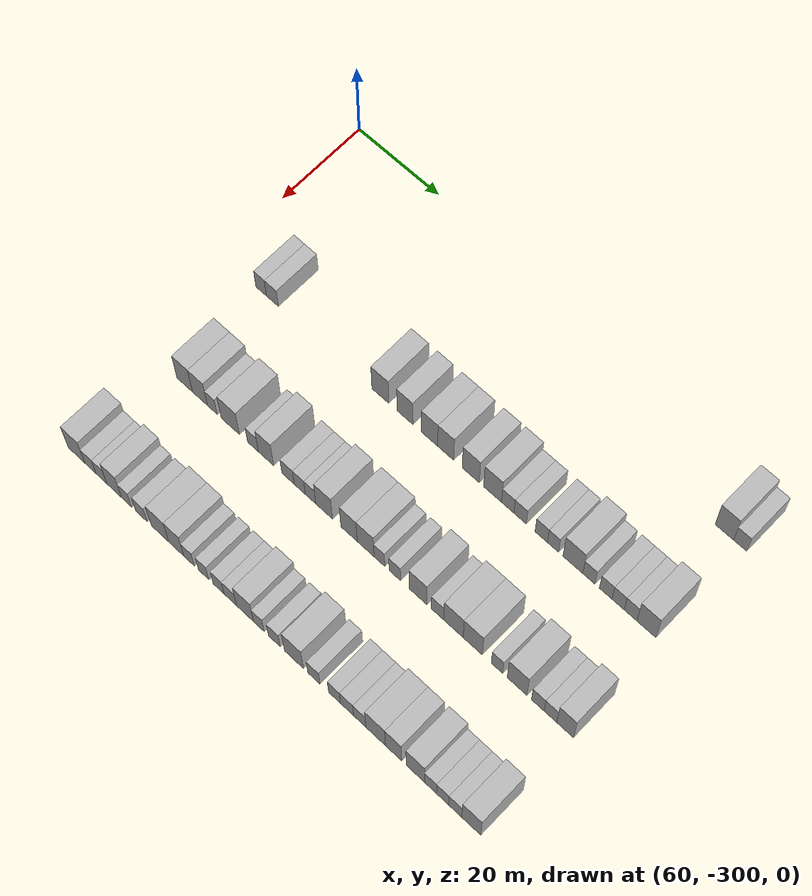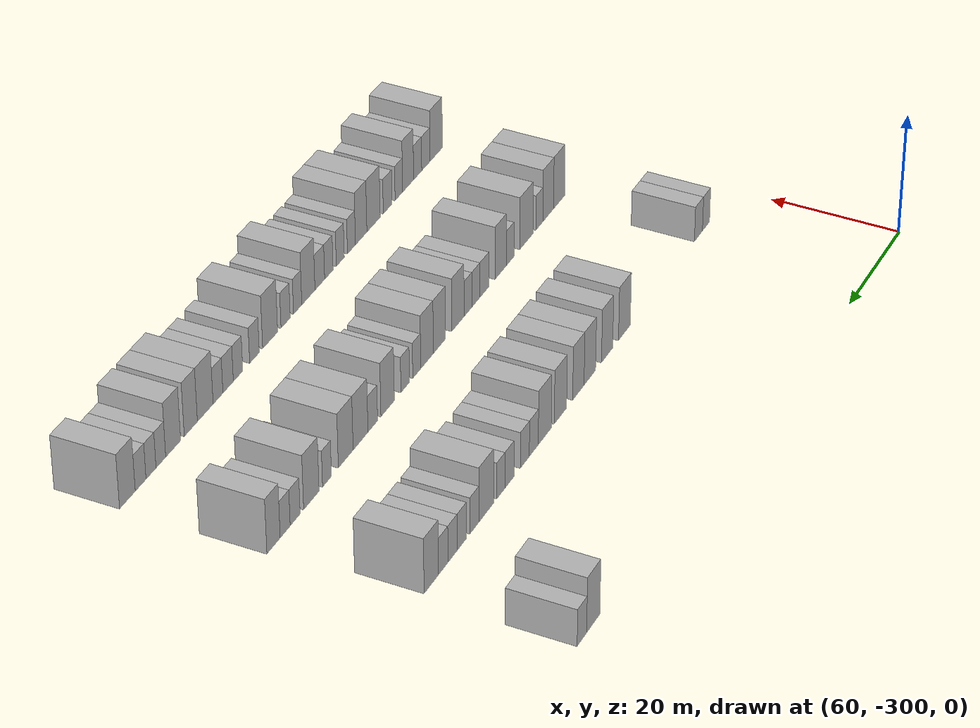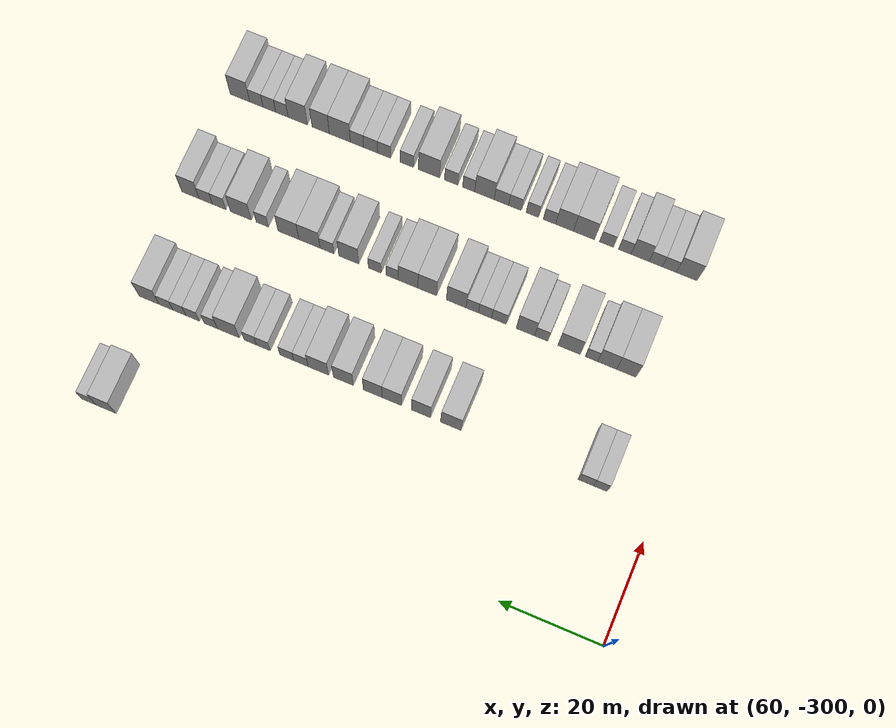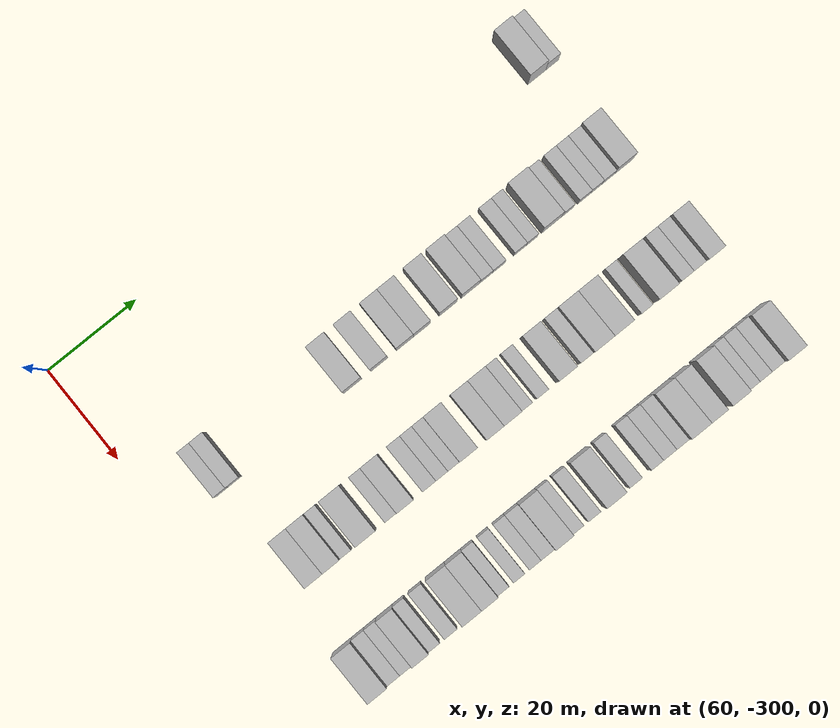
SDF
<sdf version="1.6">
 <world name="default">
  <model name="building_421">
   <static>1</static>
   <pose>69.0000 -200.2462 0 0.000000 0.000000 0.000000</pose>
   <link name="link">
    <pose>0 0 4.50 0 0 0</pose>
    <collision name="collision"><geometry><box><size>10.0000 4.0983 9.0000</size></box></geometry></collision>
    <visual name="visual">
     <cast_shadows>0</cast_shadows>
     <geometry><box><size>10.0000 4.0983 9.0000</size></box></geometry>
     <material>
      <script>
       <uri>model://HANNAS_wall/materials/scripts</uri>
       <uri>model://HANNAS_wall/materials/textures</uri>
       <name>vrc/HANNAS_wall</name>
      </script>
     </material>
    </visual>
   </link>
  </model>
  <model name="building_422">
   <static>1</static>
   <pose>69.0000 -196.7420 0 0.000000 0.000000 0.000000</pose>
   <link name="link">
    <pose>0 0 3.00 0 0 0</pose>
    <collision name="collision"><geometry><box><size>10.0000 2.9102 6.0000</size></box></geometry></collision>
    <visual name="visual">
     <cast_shadows>0</cast_shadows>
     <geometry><box><size>10.0000 2.9102 6.0000</size></box></geometry>
     <material>
      <script>
       <uri>model://HANNAS_wall/materials/scripts</uri>
       <uri>model://HANNAS_wall/materials/textures</uri>
       <name>vrc/HANNAS_wall</name>
      </script>
     </material>
    </visual>
   </link>
  </model>
  <model name="building_589">
   <static>1</static>
   <pose>91.0000 -289.3248 0 0.000000 0.000000 0.000000</pose>
   <link name="link">
    <pose>0 0 3.00 0 0 0</pose>
    <collision name="collision"><geometry><box><size>10.0000 2.6588 6.0000</size></box></geometry></collision>
    <visual name="visual">
     <cast_shadows>0</cast_shadows>
     <geometry><box><size>10.0000 2.6588 6.0000</size></box></geometry>
     <material>
      <script>
       <uri>model://HANNAS_wall/materials/scripts</uri>
       <uri>model://HANNAS_wall/materials/textures</uri>
       <name>vrc/HANNAS_wall</name>
      </script>
     </material>
    </visual>
   </link>
  </model>
  <model name="building_590">
   <static>1</static>
   <pose>91.0000 -286.5012 0 0.000000 0.000000 0.000000</pose>
   <link name="link">
    <pose>0 0 3.00 0 0 0</pose>
    <collision name="collision"><geometry><box><size>10.0000 2.9884 6.0000</size></box></geometry></collision>
    <visual name="visual">
     <cast_shadows>0</cast_shadows>
     <geometry><box><size>10.0000 2.9884 6.0000</size></box></geometry>
     <material>
      <script>
       <uri>model://HANNAS_wall/materials/scripts</uri>
       <uri>model://HANNAS_wall/materials/textures</uri>
       <name>vrc/HANNAS_wall</name>
      </script>
     </material>
    </visual>
   </link>
  </model>
  <model name="building_591">
   <static>1</static>
   <pose>91.0000 -259.8627 0 0.000000 0.000000 0.000000</pose>
   <link name="link">
    <pose>0 0 4.50 0 0 0</pose>
    <collision name="collision"><geometry><box><size>10.0000 4.0962 9.0000</size></box></geometry></collision>
    <visual name="visual">
     <cast_shadows>0</cast_shadows>
     <geometry><box><size>10.0000 4.0962 9.0000</size></box></geometry>
     <material>
      <script>
       <uri>model://HANNAS_wall/materials/scripts</uri>
       <uri>model://HANNAS_wall/materials/textures</uri>
       <name>vrc/HANNAS_wall</name>
      </script>
     </material>
    </visual>
   </link>
  </model>
  <model name="building_592">
   <static>1</static>
   <pose>91.0000 -253.9064 0 0.000000 0.000000 0.000000</pose>
   <link name="link">
    <pose>0 0 4.50 0 0 0</pose>
    <collision name="collision"><geometry><box><size>10.0000 3.8163 9.0000</size></box></geometry></collision>
    <visual name="visual">
     <cast_shadows>0</cast_shadows>
     <geometry><box><size>10.0000 3.8163 9.0000</size></box></geometry>
     <material>
      <script>
       <uri>model://HANNAS_wall/materials/scripts</uri>
       <uri>model://HANNAS_wall/materials/textures</uri>
       <name>vrc/HANNAS_wall</name>
      </script>
     </material>
    </visual>
   </link>
  </model>
  <model name="building_593">
   <static>1</static>
   <pose>91.0000 -248.0645 0 0.000000 0.000000 0.000000</pose>
   <link name="link">
    <pose>0 0 4.50 0 0 0</pose>
    <collision name="collision"><geometry><box><size>10.0000 3.8676 9.0000</size></box></geometry></collision>
    <visual name="visual">
     <cast_shadows>0</cast_shadows>
     <geometry><box><size>10.0000 3.8676 9.0000</size></box></geometry>
     <material>
      <script>
       <uri>model://HANNAS_wall/materials/scripts</uri>
       <uri>model://HANNAS_wall/materials/textures</uri>
       <name>vrc/HANNAS_wall</name>
      </script>
     </material>
    </visual>
   </link>
  </model>
  <model name="building_594">
   <static>1</static>
   <pose>91.0000 -244.2411 0 0.000000 0.000000 0.000000</pose>
   <link name="link">
    <pose>0 0 4.50 0 0 0</pose>
    <collision name="collision"><geometry><box><size>10.0000 3.7793 9.0000</size></box></geometry></collision>
    <visual name="visual">
     <cast_shadows>0</cast_shadows>
     <geometry><box><size>10.0000 3.7793 9.0000</size></box></geometry>
     <material>
      <script>
       <uri>model://HANNAS_wall/materials/scripts</uri>
       <uri>model://HANNAS_wall/materials/textures</uri>
       <name>vrc/HANNAS_wall</name>
      </script>
     </material>
    </visual>
   </link>
  </model>
  <model name="building_595">
   <static>1</static>
   <pose>91.0000 -238.3431 0 0.000000 0.000000 0.000000</pose>
   <link name="link">
    <pose>0 0 4.50 0 0 0</pose>
    <collision name="collision"><geometry><box><size>10.0000 4.0166 9.0000</size></box></geometry></collision>
    <visual name="visual">
     <cast_shadows>0</cast_shadows>
     <geometry><box><size>10.0000 4.0166 9.0000</size></box></geometry>
     <material>
      <script>
       <uri>model://HANNAS_wall/materials/scripts</uri>
       <uri>model://HANNAS_wall/materials/textures</uri>
       <name>vrc/HANNAS_wall</name>
      </script>
     </material>
    </visual>
   </link>
  </model>
  <model name="building_596">
   <static>1</static>
   <pose>91.0000 -233.2565 0 0.000000 0.000000 0.000000</pose>
   <link name="link">
    <pose>0 0 4.50 0 0 0</pose>
    <collision name="collision"><geometry><box><size>10.0000 4.1566 9.0000</size></box></geometry></collision>
    <visual name="visual">
     <cast_shadows>0</cast_shadows>
     <geometry><box><size>10.0000 4.1566 9.0000</size></box></geometry>
     <material>
      <script>
       <uri>model://HANNAS_wall/materials/scripts</uri>
       <uri>model://HANNAS_wall/materials/textures</uri>
       <name>vrc/HANNAS_wall</name>
      </script>
     </material>
    </visual>
   </link>
  </model>
  <model name="building_597">
   <static>1</static>
   <pose>91.0000 -229.7376 0 0.000000 0.000000 0.000000</pose>
   <link name="link">
    <pose>0 0 3.00 0 0 0</pose>
    <collision name="collision"><geometry><box><size>10.0000 2.8813 6.0000</size></box></geometry></collision>
    <visual name="visual">
     <cast_shadows>0</cast_shadows>
     <geometry><box><size>10.0000 2.8813 6.0000</size></box></geometry>
     <material>
      <script>
       <uri>model://HANNAS_wall/materials/scripts</uri>
       <uri>model://HANNAS_wall/materials/textures</uri>
       <name>vrc/HANNAS_wall</name>
      </script>
     </material>
    </visual>
   </link>
  </model>
  <model name="building_598">
   <static>1</static>
   <pose>91.0000 -226.8782 0 0.000000 0.000000 0.000000</pose>
   <link name="link">
    <pose>0 0 3.00 0 0 0</pose>
    <collision name="collision"><geometry><box><size>10.0000 2.8375 6.0000</size></box></geometry></collision>
    <visual name="visual">
     <cast_shadows>0</cast_shadows>
     <geometry><box><size>10.0000 2.8375 6.0000</size></box></geometry>
     <material>
      <script>
       <uri>model://HANNAS_wall/materials/scripts</uri>
       <uri>model://HANNAS_wall/materials/textures</uri>
       <name>vrc/HANNAS_wall</name>
      </script>
     </material>
    </visual>
   </link>
  </model>
  <model name="building_599">
   <static>1</static>
   <pose>91.0000 -222.0540 0 0.000000 0.000000 0.000000</pose>
   <link name="link">
    <pose>0 0 3.00 0 0 0</pose>
    <collision name="collision"><geometry><box><size>10.0000 2.8109 6.0000</size></box></geometry></collision>
    <visual name="visual">
     <cast_shadows>0</cast_shadows>
     <geometry><box><size>10.0000 2.8109 6.0000</size></box></geometry>
     <material>
      <script>
       <uri>model://HANNAS_wall/materials/scripts</uri>
       <uri>model://HANNAS_wall/materials/textures</uri>
       <name>vrc/HANNAS_wall</name>
      </script>
     </material>
    </visual>
   </link>
  </model>
  <model name="building_600">
   <static>1</static>
   <pose>91.0000 -219.3833 0 0.000000 0.000000 0.000000</pose>
   <link name="link">
    <pose>0 0 3.00 0 0 0</pose>
    <collision name="collision"><geometry><box><size>10.0000 2.5303 6.0000</size></box></geometry></collision>
    <visual name="visual">
     <cast_shadows>0</cast_shadows>
     <geometry><box><size>10.0000 2.5303 6.0000</size></box></geometry>
     <material>
      <script>
       <uri>model://HANNAS_wall/materials/scripts</uri>
       <uri>model://HANNAS_wall/materials/textures</uri>
       <name>vrc/HANNAS_wall</name>
      </script>
     </material>
    </visual>
   </link>
  </model>
  <model name="building_601">
   <static>1</static>
   <pose>91.0000 -214.8786 0 0.000000 0.000000 0.000000</pose>
   <link name="link">
    <pose>0 0 4.50 0 0 0</pose>
    <collision name="collision"><geometry><box><size>10.0000 4.4791 9.0000</size></box></geometry></collision>
    <visual name="visual">
     <cast_shadows>0</cast_shadows>
     <geometry><box><size>10.0000 4.4791 9.0000</size></box></geometry>
     <material>
      <script>
       <uri>model://HANNAS_wall/materials/scripts</uri>
       <uri>model://HANNAS_wall/materials/textures</uri>
       <name>vrc/HANNAS_wall</name>
      </script>
     </material>
    </visual>
   </link>
  </model>
  <model name="building_602">
   <static>1</static>
   <pose>91.0000 -211.2811 0 0.000000 0.000000 0.000000</pose>
   <link name="link">
    <pose>0 0 3.00 0 0 0</pose>
    <collision name="collision"><geometry><box><size>10.0000 2.7160 6.0000</size></box></geometry></collision>
    <visual name="visual">
     <cast_shadows>0</cast_shadows>
     <geometry><box><size>10.0000 2.7160 6.0000</size></box></geometry>
     <material>
      <script>
       <uri>model://HANNAS_wall/materials/scripts</uri>
       <uri>model://HANNAS_wall/materials/textures</uri>
       <name>vrc/HANNAS_wall</name>
      </script>
     </material>
    </visual>
   </link>
  </model>
  <model name="building_603">
   <static>1</static>
   <pose>91.0000 -207.5125 0 0.000000 0.000000 0.000000</pose>
   <link name="link">
    <pose>0 0 3.00 0 0 0</pose>
    <collision name="collision"><geometry><box><size>10.0000 2.8211 6.0000</size></box></geometry></collision>
    <visual name="visual">
     <cast_shadows>0</cast_shadows>
     <geometry><box><size>10.0000 2.8211 6.0000</size></box></geometry>
     <material>
      <script>
       <uri>model://HANNAS_wall/materials/scripts</uri>
       <uri>model://HANNAS_wall/materials/textures</uri>
       <name>vrc/HANNAS_wall</name>
      </script>
     </material>
    </visual>
   </link>
  </model>
  <model name="building_604">
   <static>1</static>
   <pose>91.0000 -204.7439 0 0.000000 0.000000 0.000000</pose>
   <link name="link">
    <pose>0 0 3.00 0 0 0</pose>
    <collision name="collision"><geometry><box><size>10.0000 2.7161 6.0000</size></box></geometry></collision>
    <visual name="visual">
     <cast_shadows>0</cast_shadows>
     <geometry><box><size>10.0000 2.7161 6.0000</size></box></geometry>
     <material>
      <script>
       <uri>model://HANNAS_wall/materials/scripts</uri>
       <uri>model://HANNAS_wall/materials/textures</uri>
       <name>vrc/HANNAS_wall</name>
      </script>
     </material>
    </visual>
   </link>
  </model>
  <model name="building_605">
   <static>1</static>
   <pose>91.0000 -201.9859 0 0.000000 0.000000 0.000000</pose>
   <link name="link">
    <pose>0 0 3.00 0 0 0</pose>
    <collision name="collision"><geometry><box><size>10.0000 2.7999 6.0000</size></box></geometry></collision>
    <visual name="visual">
     <cast_shadows>0</cast_shadows>
     <geometry><box><size>10.0000 2.7999 6.0000</size></box></geometry>
     <material>
      <script>
       <uri>model://HANNAS_wall/materials/scripts</uri>
       <uri>model://HANNAS_wall/materials/textures</uri>
       <name>vrc/HANNAS_wall</name>
      </script>
     </material>
    </visual>
   </link>
  </model>
  <model name="building_606">
   <static>1</static>
   <pose>91.0000 -198.4863 0 0.000000 0.000000 0.000000</pose>
   <link name="link">
    <pose>0 0 4.50 0 0 0</pose>
    <collision name="collision"><geometry><box><size>10.0000 4.1994 9.0000</size></box></geometry></collision>
    <visual name="visual">
     <cast_shadows>0</cast_shadows>
     <geometry><box><size>10.0000 4.1994 9.0000</size></box></geometry>
     <material>
      <script>
       <uri>model://HANNAS_wall/materials/scripts</uri>
       <uri>model://HANNAS_wall/materials/textures</uri>
       <name>vrc/HANNAS_wall</name>
      </script>
     </material>
    </visual>
   </link>
  </model>
  <model name="building_774">
   <static>1</static>
   <pose>113.0000 -285.9499 0 0.000000 0.000000 0.000000</pose>
   <link name="link">
    <pose>0 0 4.50 0 0 0</pose>
    <collision name="collision"><geometry><box><size>10.0000 3.8995 9.0000</size></box></geometry></collision>
    <visual name="visual">
     <cast_shadows>0</cast_shadows>
     <geometry><box><size>10.0000 3.8995 9.0000</size></box></geometry>
     <material>
      <script>
       <uri>model://HANNAS_wall/materials/scripts</uri>
       <uri>model://HANNAS_wall/materials/textures</uri>
       <name>vrc/HANNAS_wall</name>
      </script>
     </material>
    </visual>
   </link>
  </model>
  <model name="building_775">
   <static>1</static>
   <pose>113.0000 -282.1266 0 0.000000 0.000000 0.000000</pose>
   <link name="link">
    <pose>0 0 4.50 0 0 0</pose>
    <collision name="collision"><geometry><box><size>10.0000 3.7471 9.0000</size></box></geometry></collision>
    <visual name="visual">
     <cast_shadows>0</cast_shadows>
     <geometry><box><size>10.0000 3.7471 9.0000</size></box></geometry>
     <material>
      <script>
       <uri>model://HANNAS_wall/materials/scripts</uri>
       <uri>model://HANNAS_wall/materials/textures</uri>
       <name>vrc/HANNAS_wall</name>
      </script>
     </material>
    </visual>
   </link>
  </model>
  <model name="building_776">
   <static>1</static>
   <pose>113.0000 -279.0355 0 0.000000 0.000000 0.000000</pose>
   <link name="link">
    <pose>0 0 3.00 0 0 0</pose>
    <collision name="collision"><geometry><box><size>10.0000 2.4351 6.0000</size></box></geometry></collision>
    <visual name="visual">
     <cast_shadows>0</cast_shadows>
     <geometry><box><size>10.0000 2.4351 6.0000</size></box></geometry>
     <material>
      <script>
       <uri>model://HANNAS_wall/materials/scripts</uri>
       <uri>model://HANNAS_wall/materials/textures</uri>
       <name>vrc/HANNAS_wall</name>
      </script>
     </material>
    </visual>
   </link>
  </model>
  <model name="building_777">
   <static>1</static>
   <pose>113.0000 -274.5743 0 0.000000 0.000000 0.000000</pose>
   <link name="link">
    <pose>0 0 4.50 0 0 0</pose>
    <collision name="collision"><geometry><box><size>10.0000 4.4873 9.0000</size></box></geometry></collision>
    <visual name="visual">
     <cast_shadows>0</cast_shadows>
     <geometry><box><size>10.0000 4.4873 9.0000</size></box></geometry>
     <material>
      <script>
       <uri>model://HANNAS_wall/materials/scripts</uri>
       <uri>model://HANNAS_wall/materials/textures</uri>
       <name>vrc/HANNAS_wall</name>
      </script>
     </material>
    </visual>
   </link>
  </model>
  <model name="building_778">
   <static>1</static>
   <pose>113.0000 -269.0044 0 0.000000 0.000000 0.000000</pose>
   <link name="link">
    <pose>0 0 3.00 0 0 0</pose>
    <collision name="collision"><geometry><box><size>10.0000 2.6524 6.0000</size></box></geometry></collision>
    <visual name="visual">
     <cast_shadows>0</cast_shadows>
     <geometry><box><size>10.0000 2.6524 6.0000</size></box></geometry>
     <material>
      <script>
       <uri>model://HANNAS_wall/materials/scripts</uri>
       <uri>model://HANNAS_wall/materials/textures</uri>
       <name>vrc/HANNAS_wall</name>
      </script>
     </material>
    </visual>
   </link>
  </model>
  <model name="building_779">
   <static>1</static>
   <pose>113.0000 -265.8194 0 0.000000 0.000000 0.000000</pose>
   <link name="link">
    <pose>0 0 4.50 0 0 0</pose>
    <collision name="collision"><geometry><box><size>10.0000 3.7177 9.0000</size></box></geometry></collision>
    <visual name="visual">
     <cast_shadows>0</cast_shadows>
     <geometry><box><size>10.0000 3.7177 9.0000</size></box></geometry>
     <material>
      <script>
       <uri>model://HANNAS_wall/materials/scripts</uri>
       <uri>model://HANNAS_wall/materials/textures</uri>
       <name>vrc/HANNAS_wall</name>
      </script>
     </material>
    </visual>
   </link>
  </model>
  <model name="building_780">
   <static>1</static>
   <pose>113.0000 -260.4699 0 0.000000 0.000000 0.000000</pose>
   <link name="link">
    <pose>0 0 3.00 0 0 0</pose>
    <collision name="collision"><geometry><box><size>10.0000 2.9814 6.0000</size></box></geometry></collision>
    <visual name="visual">
     <cast_shadows>0</cast_shadows>
     <geometry><box><size>10.0000 2.9814 6.0000</size></box></geometry>
     <material>
      <script>
       <uri>model://HANNAS_wall/materials/scripts</uri>
       <uri>model://HANNAS_wall/materials/textures</uri>
       <name>vrc/HANNAS_wall</name>
      </script>
     </material>
    </visual>
   </link>
  </model>
  <model name="building_781">
   <static>1</static>
   <pose>113.0000 -257.6438 0 0.000000 0.000000 0.000000</pose>
   <link name="link">
    <pose>0 0 3.00 0 0 0</pose>
    <collision name="collision"><geometry><box><size>10.0000 2.6707 6.0000</size></box></geometry></collision>
    <visual name="visual">
     <cast_shadows>0</cast_shadows>
     <geometry><box><size>10.0000 2.6707 6.0000</size></box></geometry>
     <material>
      <script>
       <uri>model://HANNAS_wall/materials/scripts</uri>
       <uri>model://HANNAS_wall/materials/textures</uri>
       <name>vrc/HANNAS_wall</name>
      </script>
     </material>
    </visual>
   </link>
  </model>
  <model name="building_782">
   <static>1</static>
   <pose>113.0000 -255.0468 0 0.000000 0.000000 0.000000</pose>
   <link name="link">
    <pose>0 0 3.00 0 0 0</pose>
    <collision name="collision"><geometry><box><size>10.0000 2.5232 6.0000</size></box></geometry></collision>
    <visual name="visual">
     <cast_shadows>0</cast_shadows>
     <geometry><box><size>10.0000 2.5232 6.0000</size></box></geometry>
     <material>
      <script>
       <uri>model://HANNAS_wall/materials/scripts</uri>
       <uri>model://HANNAS_wall/materials/textures</uri>
       <name>vrc/HANNAS_wall</name>
      </script>
     </material>
    </visual>
   </link>
  </model>
  <model name="building_783">
   <static>1</static>
   <pose>113.0000 -251.7924 0 0.000000 0.000000 0.000000</pose>
   <link name="link">
    <pose>0 0 4.50 0 0 0</pose>
    <collision name="collision"><geometry><box><size>10.0000 3.9856 9.0000</size></box></geometry></collision>
    <visual name="visual">
     <cast_shadows>0</cast_shadows>
     <geometry><box><size>10.0000 3.9856 9.0000</size></box></geometry>
     <material>
      <script>
       <uri>model://HANNAS_wall/materials/scripts</uri>
       <uri>model://HANNAS_wall/materials/textures</uri>
       <name>vrc/HANNAS_wall</name>
      </script>
     </material>
    </visual>
   </link>
  </model>
  <model name="building_784">
   <static>1</static>
   <pose>113.0000 -245.8751 0 0.000000 0.000000 0.000000</pose>
   <link name="link">
    <pose>0 0 4.50 0 0 0</pose>
    <collision name="collision"><geometry><box><size>10.0000 3.8490 9.0000</size></box></geometry></collision>
    <visual name="visual">
     <cast_shadows>0</cast_shadows>
     <geometry><box><size>10.0000 3.8490 9.0000</size></box></geometry>
     <material>
      <script>
       <uri>model://HANNAS_wall/materials/scripts</uri>
       <uri>model://HANNAS_wall/materials/textures</uri>
       <name>vrc/HANNAS_wall</name>
      </script>
     </material>
    </visual>
   </link>
  </model>
  <model name="building_785">
   <static>1</static>
   <pose>113.0000 -241.9595 0 0.000000 0.000000 0.000000</pose>
   <link name="link">
    <pose>0 0 4.50 0 0 0</pose>
    <collision name="collision"><geometry><box><size>10.0000 3.9824 9.0000</size></box></geometry></collision>
    <visual name="visual">
     <cast_shadows>0</cast_shadows>
     <geometry><box><size>10.0000 3.9824 9.0000</size></box></geometry>
     <material>
      <script>
       <uri>model://HANNAS_wall/materials/scripts</uri>
       <uri>model://HANNAS_wall/materials/textures</uri>
       <name>vrc/HANNAS_wall</name>
      </script>
     </material>
    </visual>
   </link>
  </model>
  <model name="building_786">
   <static>1</static>
   <pose>113.0000 -238.7215 0 0.000000 0.000000 0.000000</pose>
   <link name="link">
    <pose>0 0 3.00 0 0 0</pose>
    <collision name="collision"><geometry><box><size>10.0000 2.4935 6.0000</size></box></geometry></collision>
    <visual name="visual">
     <cast_shadows>0</cast_shadows>
     <geometry><box><size>10.0000 2.4935 6.0000</size></box></geometry>
     <material>
      <script>
       <uri>model://HANNAS_wall/materials/scripts</uri>
       <uri>model://HANNAS_wall/materials/textures</uri>
       <name>vrc/HANNAS_wall</name>
      </script>
     </material>
    </visual>
   </link>
  </model>
  <model name="building_787">
   <static>1</static>
   <pose>113.0000 -235.1501 0 0.000000 0.000000 0.000000</pose>
   <link name="link">
    <pose>0 0 3.00 0 0 0</pose>
    <collision name="collision"><geometry><box><size>10.0000 2.6494 6.0000</size></box></geometry></collision>
    <visual name="visual">
     <cast_shadows>0</cast_shadows>
     <geometry><box><size>10.0000 2.6494 6.0000</size></box></geometry>
     <material>
      <script>
       <uri>model://HANNAS_wall/materials/scripts</uri>
       <uri>model://HANNAS_wall/materials/textures</uri>
       <name>vrc/HANNAS_wall</name>
      </script>
     </material>
    </visual>
   </link>
  </model>
  <model name="building_788">
   <static>1</static>
   <pose>113.0000 -229.7732 0 0.000000 0.000000 0.000000</pose>
   <link name="link">
    <pose>0 0 4.50 0 0 0</pose>
    <collision name="collision"><geometry><box><size>10.0000 4.1044 9.0000</size></box></geometry></collision>
    <visual name="visual">
     <cast_shadows>0</cast_shadows>
     <geometry><box><size>10.0000 4.1044 9.0000</size></box></geometry>
     <material>
      <script>
       <uri>model://HANNAS_wall/materials/scripts</uri>
       <uri>model://HANNAS_wall/materials/textures</uri>
       <name>vrc/HANNAS_wall</name>
      </script>
     </material>
    </visual>
   </link>
  </model>
  <model name="building_789">
   <static>1</static>
   <pose>113.0000 -225.2802 0 0.000000 0.000000 0.000000</pose>
   <link name="link">
    <pose>0 0 3.00 0 0 0</pose>
    <collision name="collision"><geometry><box><size>10.0000 2.8815 6.0000</size></box></geometry></collision>
    <visual name="visual">
     <cast_shadows>0</cast_shadows>
     <geometry><box><size>10.0000 2.8815 6.0000</size></box></geometry>
     <material>
      <script>
       <uri>model://HANNAS_wall/materials/scripts</uri>
       <uri>model://HANNAS_wall/materials/textures</uri>
       <name>vrc/HANNAS_wall</name>
      </script>
     </material>
    </visual>
   </link>
  </model>
  <model name="building_790">
   <static>1</static>
   <pose>113.0000 -221.6399 0 0.000000 0.000000 0.000000</pose>
   <link name="link">
    <pose>0 0 4.50 0 0 0</pose>
    <collision name="collision"><geometry><box><size>10.0000 4.3992 9.0000</size></box></geometry></collision>
    <visual name="visual">
     <cast_shadows>0</cast_shadows>
     <geometry><box><size>10.0000 4.3992 9.0000</size></box></geometry>
     <material>
      <script>
       <uri>model://HANNAS_wall/materials/scripts</uri>
       <uri>model://HANNAS_wall/materials/textures</uri>
       <name>vrc/HANNAS_wall</name>
      </script>
     </material>
    </visual>
   </link>
  </model>
  <model name="building_791">
   <static>1</static>
   <pose>113.0000 -217.2695 0 0.000000 0.000000 0.000000</pose>
   <link name="link">
    <pose>0 0 4.50 0 0 0</pose>
    <collision name="collision"><geometry><box><size>10.0000 4.3414 9.0000</size></box></geometry></collision>
    <visual name="visual">
     <cast_shadows>0</cast_shadows>
     <geometry><box><size>10.0000 4.3414 9.0000</size></box></geometry>
     <material>
      <script>
       <uri>model://HANNAS_wall/materials/scripts</uri>
       <uri>model://HANNAS_wall/materials/textures</uri>
       <name>vrc/HANNAS_wall</name>
      </script>
     </material>
    </visual>
   </link>
  </model>
  <model name="building_792">
   <static>1</static>
   <pose>113.0000 -211.8120 0 0.000000 0.000000 0.000000</pose>
   <link name="link">
    <pose>0 0 3.00 0 0 0</pose>
    <collision name="collision"><geometry><box><size>10.0000 2.5736 6.0000</size></box></geometry></collision>
    <visual name="visual">
     <cast_shadows>0</cast_shadows>
     <geometry><box><size>10.0000 2.5736 6.0000</size></box></geometry>
     <material>
      <script>
       <uri>model://HANNAS_wall/materials/scripts</uri>
       <uri>model://HANNAS_wall/materials/textures</uri>
       <name>vrc/HANNAS_wall</name>
      </script>
     </material>
    </visual>
   </link>
  </model>
  <model name="building_793">
   <static>1</static>
   <pose>113.0000 -207.3305 0 0.000000 0.000000 0.000000</pose>
   <link name="link">
    <pose>0 0 4.50 0 0 0</pose>
    <collision name="collision"><geometry><box><size>10.0000 4.3893 9.0000</size></box></geometry></collision>
    <visual name="visual">
     <cast_shadows>0</cast_shadows>
     <geometry><box><size>10.0000 4.3893 9.0000</size></box></geometry>
     <material>
      <script>
       <uri>model://HANNAS_wall/materials/scripts</uri>
       <uri>model://HANNAS_wall/materials/textures</uri>
       <name>vrc/HANNAS_wall</name>
      </script>
     </material>
    </visual>
   </link>
  </model>
  <model name="building_794">
   <static>1</static>
   <pose>113.0000 -202.7371 0 0.000000 0.000000 0.000000</pose>
   <link name="link">
    <pose>0 0 3.00 0 0 0</pose>
    <collision name="collision"><geometry><box><size>10.0000 2.7977 6.0000</size></box></geometry></collision>
    <visual name="visual">
     <cast_shadows>0</cast_shadows>
     <geometry><box><size>10.0000 2.7977 6.0000</size></box></geometry>
     <material>
      <script>
       <uri>model://HANNAS_wall/materials/scripts</uri>
       <uri>model://HANNAS_wall/materials/textures</uri>
       <name>vrc/HANNAS_wall</name>
      </script>
     </material>
    </visual>
   </link>
  </model>
  <model name="building_795">
   <static>1</static>
   <pose>113.0000 -199.9471 0 0.000000 0.000000 0.000000</pose>
   <link name="link">
    <pose>0 0 3.00 0 0 0</pose>
    <collision name="collision"><geometry><box><size>10.0000 2.7822 6.0000</size></box></geometry></collision>
    <visual name="visual">
     <cast_shadows>0</cast_shadows>
     <geometry><box><size>10.0000 2.7822 6.0000</size></box></geometry>
     <material>
      <script>
       <uri>model://HANNAS_wall/materials/scripts</uri>
       <uri>model://HANNAS_wall/materials/textures</uri>
       <name>vrc/HANNAS_wall</name>
      </script>
     </material>
    </visual>
   </link>
  </model>
  <model name="building_796">
   <static>1</static>
   <pose>113.0000 -196.7197 0 0.000000 0.000000 0.000000</pose>
   <link name="link">
    <pose>0 0 4.50 0 0 0</pose>
    <collision name="collision"><geometry><box><size>10.0000 3.6726 9.0000</size></box></geometry></collision>
    <visual name="visual">
     <cast_shadows>0</cast_shadows>
     <geometry><box><size>10.0000 3.6726 9.0000</size></box></geometry>
     <material>
      <script>
       <uri>model://HANNAS_wall/materials/scripts</uri>
       <uri>model://HANNAS_wall/materials/textures</uri>
       <name>vrc/HANNAS_wall</name>
      </script>
     </material>
    </visual>
   </link>
  </model>
  <model name="building_969">
   <static>1</static>
   <pose>135.0000 -289.7608 0 0.000000 0.000000 0.000000</pose>
   <link name="link">
    <pose>0 0 4.50 0 0 0</pose>
    <collision name="collision"><geometry><box><size>10.0000 4.2224 9.0000</size></box></geometry></collision>
    <visual name="visual">
     <cast_shadows>0</cast_shadows>
     <geometry><box><size>10.0000 4.2224 9.0000</size></box></geometry>
     <material>
      <script>
       <uri>model://HANNAS_wall/materials/scripts</uri>
       <uri>model://HANNAS_wall/materials/textures</uri>
       <name>vrc/HANNAS_wall</name>
      </script>
     </material>
    </visual>
   </link>
  </model>
  <model name="building_970">
   <static>1</static>
   <pose>135.0000 -286.2488 0 0.000000 0.000000 0.000000</pose>
   <link name="link">
    <pose>0 0 3.00 0 0 0</pose>
    <collision name="collision"><geometry><box><size>10.0000 2.8015 6.0000</size></box></geometry></collision>
    <visual name="visual">
     <cast_shadows>0</cast_shadows>
     <geometry><box><size>10.0000 2.8015 6.0000</size></box></geometry>
     <material>
      <script>
       <uri>model://HANNAS_wall/materials/scripts</uri>
       <uri>model://HANNAS_wall/materials/textures</uri>
       <name>vrc/HANNAS_wall</name>
      </script>
     </material>
    </visual>
   </link>
  </model>
  <model name="building_971">
   <static>1</static>
   <pose>135.0000 -283.4926 0 0.000000 0.000000 0.000000</pose>
   <link name="link">
    <pose>0 0 3.00 0 0 0</pose>
    <collision name="collision"><geometry><box><size>10.0000 2.7111 6.0000</size></box></geometry></collision>
    <visual name="visual">
     <cast_shadows>0</cast_shadows>
     <geometry><box><size>10.0000 2.7111 6.0000</size></box></geometry>
     <material>
      <script>
       <uri>model://HANNAS_wall/materials/scripts</uri>
       <uri>model://HANNAS_wall/materials/textures</uri>
       <name>vrc/HANNAS_wall</name>
      </script>
     </material>
    </visual>
   </link>
  </model>
  <model name="building_972">
   <static>1</static>
   <pose>135.0000 -280.3118 0 0.000000 0.000000 0.000000</pose>
   <link name="link">
    <pose>0 0 4.50 0 0 0</pose>
    <collision name="collision"><geometry><box><size>10.0000 3.6504 9.0000</size></box></geometry></collision>
    <visual name="visual">
     <cast_shadows>0</cast_shadows>
     <geometry><box><size>10.0000 3.6504 9.0000</size></box></geometry>
     <material>
      <script>
       <uri>model://HANNAS_wall/materials/scripts</uri>
       <uri>model://HANNAS_wall/materials/textures</uri>
       <name>vrc/HANNAS_wall</name>
      </script>
     </material>
    </visual>
   </link>
  </model>
  <model name="building_973">
   <static>1</static>
   <pose>135.0000 -277.2375 0 0.000000 0.000000 0.000000</pose>
   <link name="link">
    <pose>0 0 3.00 0 0 0</pose>
    <collision name="collision"><geometry><box><size>10.0000 2.4983 6.0000</size></box></geometry></collision>
    <visual name="visual">
     <cast_shadows>0</cast_shadows>
     <geometry><box><size>10.0000 2.4983 6.0000</size></box></geometry>
     <material>
      <script>
       <uri>model://HANNAS_wall/materials/scripts</uri>
       <uri>model://HANNAS_wall/materials/textures</uri>
       <name>vrc/HANNAS_wall</name>
      </script>
     </material>
    </visual>
   </link>
  </model>
  <model name="building_974">
   <static>1</static>
   <pose>135.0000 -273.5533 0 0.000000 0.000000 0.000000</pose>
   <link name="link">
    <pose>0 0 3.00 0 0 0</pose>
    <collision name="collision"><geometry><box><size>10.0000 2.8702 6.0000</size></box></geometry></collision>
    <visual name="visual">
     <cast_shadows>0</cast_shadows>
     <geometry><box><size>10.0000 2.8702 6.0000</size></box></geometry>
     <material>
      <script>
       <uri>model://HANNAS_wall/materials/scripts</uri>
       <uri>model://HANNAS_wall/materials/textures</uri>
       <name>vrc/HANNAS_wall</name>
      </script>
     </material>
    </visual>
   </link>
  </model>
  <model name="building_975">
   <static>1</static>
   <pose>135.0000 -268.9725 0 0.000000 0.000000 0.000000</pose>
   <link name="link">
    <pose>0 0 4.50 0 0 0</pose>
    <collision name="collision"><geometry><box><size>10.0000 4.2915 9.0000</size></box></geometry></collision>
    <visual name="visual">
     <cast_shadows>0</cast_shadows>
     <geometry><box><size>10.0000 4.2915 9.0000</size></box></geometry>
     <material>
      <script>
       <uri>model://HANNAS_wall/materials/scripts</uri>
       <uri>model://HANNAS_wall/materials/textures</uri>
       <name>vrc/HANNAS_wall</name>
      </script>
     </material>
    </visual>
   </link>
  </model>
  <model name="building_976">
   <static>1</static>
   <pose>135.0000 -265.0019 0 0.000000 0.000000 0.000000</pose>
   <link name="link">
    <pose>0 0 4.50 0 0 0</pose>
    <collision name="collision"><geometry><box><size>10.0000 3.6497 9.0000</size></box></geometry></collision>
    <visual name="visual">
     <cast_shadows>0</cast_shadows>
     <geometry><box><size>10.0000 3.6497 9.0000</size></box></geometry>
     <material>
      <script>
       <uri>model://HANNAS_wall/materials/scripts</uri>
       <uri>model://HANNAS_wall/materials/textures</uri>
       <name>vrc/HANNAS_wall</name>
      </script>
     </material>
    </visual>
   </link>
  </model>
  <model name="building_977">
   <static>1</static>
   <pose>135.0000 -261.9032 0 0.000000 0.000000 0.000000</pose>
   <link name="link">
    <pose>0 0 3.00 0 0 0</pose>
    <collision name="collision"><geometry><box><size>10.0000 2.5476 6.0000</size></box></geometry></collision>
    <visual name="visual">
     <cast_shadows>0</cast_shadows>
     <geometry><box><size>10.0000 2.5476 6.0000</size></box></geometry>
     <material>
      <script>
       <uri>model://HANNAS_wall/materials/scripts</uri>
       <uri>model://HANNAS_wall/materials/textures</uri>
       <name>vrc/HANNAS_wall</name>
      </script>
     </material>
    </visual>
   </link>
  </model>
  <model name="building_978">
   <static>1</static>
   <pose>135.0000 -258.3734 0 0.000000 0.000000 0.000000</pose>
   <link name="link">
    <pose>0 0 3.00 0 0 0</pose>
    <collision name="collision"><geometry><box><size>10.0000 2.5121 6.0000</size></box></geometry></collision>
    <visual name="visual">
     <cast_shadows>0</cast_shadows>
     <geometry><box><size>10.0000 2.5121 6.0000</size></box></geometry>
     <material>
      <script>
       <uri>model://HANNAS_wall/materials/scripts</uri>
       <uri>model://HANNAS_wall/materials/textures</uri>
       <name>vrc/HANNAS_wall</name>
      </script>
     </material>
    </visual>
   </link>
  </model>
  <model name="building_979">
   <static>1</static>
   <pose>135.0000 -254.8117 0 0.000000 0.000000 0.000000</pose>
   <link name="link">
    <pose>0 0 3.00 0 0 0</pose>
    <collision name="collision"><geometry><box><size>10.0000 2.6112 6.0000</size></box></geometry></collision>
    <visual name="visual">
     <cast_shadows>0</cast_shadows>
     <geometry><box><size>10.0000 2.6112 6.0000</size></box></geometry>
     <material>
      <script>
       <uri>model://HANNAS_wall/materials/scripts</uri>
       <uri>model://HANNAS_wall/materials/textures</uri>
       <name>vrc/HANNAS_wall</name>
      </script>
     </material>
    </visual>
   </link>
  </model>
  <model name="building_980">
   <static>1</static>
   <pose>135.0000 -252.0089 0 0.000000 0.000000 0.000000</pose>
   <link name="link">
    <pose>0 0 3.00 0 0 0</pose>
    <collision name="collision"><geometry><box><size>10.0000 2.9945 6.0000</size></box></geometry></collision>
    <visual name="visual">
     <cast_shadows>0</cast_shadows>
     <geometry><box><size>10.0000 2.9945 6.0000</size></box></geometry>
     <material>
      <script>
       <uri>model://HANNAS_wall/materials/scripts</uri>
       <uri>model://HANNAS_wall/materials/textures</uri>
       <name>vrc/HANNAS_wall</name>
      </script>
     </material>
    </visual>
   </link>
  </model>
  <model name="building_981">
   <static>1</static>
   <pose>135.0000 -248.4929 0 0.000000 0.000000 0.000000</pose>
   <link name="link">
    <pose>0 0 4.50 0 0 0</pose>
    <collision name="collision"><geometry><box><size>10.0000 4.0374 9.0000</size></box></geometry></collision>
    <visual name="visual">
     <cast_shadows>0</cast_shadows>
     <geometry><box><size>10.0000 4.0374 9.0000</size></box></geometry>
     <material>
      <script>
       <uri>model://HANNAS_wall/materials/scripts</uri>
       <uri>model://HANNAS_wall/materials/textures</uri>
       <name>vrc/HANNAS_wall</name>
      </script>
     </material>
    </visual>
   </link>
  </model>
  <model name="building_982">
   <static>1</static>
   <pose>135.0000 -245.2257 0 0.000000 0.000000 0.000000</pose>
   <link name="link">
    <pose>0 0 3.00 0 0 0</pose>
    <collision name="collision"><geometry><box><size>10.0000 2.4970 6.0000</size></box></geometry></collision>
    <visual name="visual">
     <cast_shadows>0</cast_shadows>
     <geometry><box><size>10.0000 2.4970 6.0000</size></box></geometry>
     <material>
      <script>
       <uri>model://HANNAS_wall/materials/scripts</uri>
       <uri>model://HANNAS_wall/materials/textures</uri>
       <name>vrc/HANNAS_wall</name>
      </script>
     </material>
    </visual>
   </link>
  </model>
  <model name="building_983">
   <static>1</static>
   <pose>135.0000 -241.5903 0 0.000000 0.000000 0.000000</pose>
   <link name="link">
    <pose>0 0 3.00 0 0 0</pose>
    <collision name="collision"><geometry><box><size>10.0000 2.7738 6.0000</size></box></geometry></collision>
    <visual name="visual">
     <cast_shadows>0</cast_shadows>
     <geometry><box><size>10.0000 2.7738 6.0000</size></box></geometry>
     <material>
      <script>
       <uri>model://HANNAS_wall/materials/scripts</uri>
       <uri>model://HANNAS_wall/materials/textures</uri>
       <name>vrc/HANNAS_wall</name>
      </script>
     </material>
    </visual>
   </link>
  </model>
  <model name="building_984">
   <static>1</static>
   <pose>135.0000 -236.9854 0 0.000000 0.000000 0.000000</pose>
   <link name="link">
    <pose>0 0 4.50 0 0 0</pose>
    <collision name="collision"><geometry><box><size>10.0000 4.4361 9.0000</size></box></geometry></collision>
    <visual name="visual">
     <cast_shadows>0</cast_shadows>
     <geometry><box><size>10.0000 4.4361 9.0000</size></box></geometry>
     <material>
      <script>
       <uri>model://HANNAS_wall/materials/scripts</uri>
       <uri>model://HANNAS_wall/materials/textures</uri>
       <name>vrc/HANNAS_wall</name>
      </script>
     </material>
    </visual>
   </link>
  </model>
  <model name="building_985">
   <static>1</static>
   <pose>135.0000 -232.3625 0 0.000000 0.000000 0.000000</pose>
   <link name="link">
    <pose>0 0 3.00 0 0 0</pose>
    <collision name="collision"><geometry><box><size>10.0000 2.8098 6.0000</size></box></geometry></collision>
    <visual name="visual">
     <cast_shadows>0</cast_shadows>
     <geometry><box><size>10.0000 2.8098 6.0000</size></box></geometry>
     <material>
      <script>
       <uri>model://HANNAS_wall/materials/scripts</uri>
       <uri>model://HANNAS_wall/materials/textures</uri>
       <name>vrc/HANNAS_wall</name>
      </script>
     </material>
    </visual>
   </link>
  </model>
  <model name="building_986">
   <static>1</static>
   <pose>135.0000 -227.5920 0 0.000000 0.000000 0.000000</pose>
   <link name="link">
    <pose>0 0 3.00 0 0 0</pose>
    <collision name="collision"><geometry><box><size>10.0000 2.7311 6.0000</size></box></geometry></collision>
    <visual name="visual">
     <cast_shadows>0</cast_shadows>
     <geometry><box><size>10.0000 2.7311 6.0000</size></box></geometry>
     <material>
      <script>
       <uri>model://HANNAS_wall/materials/scripts</uri>
       <uri>model://HANNAS_wall/materials/textures</uri>
       <name>vrc/HANNAS_wall</name>
      </script>
     </material>
    </visual>
   </link>
  </model>
  <model name="building_987">
   <static>1</static>
   <pose>135.0000 -224.7372 0 0.000000 0.000000 0.000000</pose>
   <link name="link">
    <pose>0 0 3.00 0 0 0</pose>
    <collision name="collision"><geometry><box><size>10.0000 2.9785 6.0000</size></box></geometry></collision>
    <visual name="visual">
     <cast_shadows>0</cast_shadows>
     <geometry><box><size>10.0000 2.9785 6.0000</size></box></geometry>
     <material>
      <script>
       <uri>model://HANNAS_wall/materials/scripts</uri>
       <uri>model://HANNAS_wall/materials/textures</uri>
       <name>vrc/HANNAS_wall</name>
      </script>
     </material>
    </visual>
   </link>
  </model>
  <model name="building_988">
   <static>1</static>
   <pose>135.0000 -221.8545 0 0.000000 0.000000 0.000000</pose>
   <link name="link">
    <pose>0 0 3.00 0 0 0</pose>
    <collision name="collision"><geometry><box><size>10.0000 2.7868 6.0000</size></box></geometry></collision>
    <visual name="visual">
     <cast_shadows>0</cast_shadows>
     <geometry><box><size>10.0000 2.7868 6.0000</size></box></geometry>
     <material>
      <script>
       <uri>model://HANNAS_wall/materials/scripts</uri>
       <uri>model://HANNAS_wall/materials/textures</uri>
       <name>vrc/HANNAS_wall</name>
      </script>
     </material>
    </visual>
   </link>
  </model>
  <model name="building_989">
   <static>1</static>
   <pose>135.0000 -218.2487 0 0.000000 0.000000 0.000000</pose>
   <link name="link">
    <pose>0 0 4.50 0 0 0</pose>
    <collision name="collision"><geometry><box><size>10.0000 4.4248 9.0000</size></box></geometry></collision>
    <visual name="visual">
     <cast_shadows>0</cast_shadows>
     <geometry><box><size>10.0000 4.4248 9.0000</size></box></geometry>
     <material>
      <script>
       <uri>model://HANNAS_wall/materials/scripts</uri>
       <uri>model://HANNAS_wall/materials/textures</uri>
       <name>vrc/HANNAS_wall</name>
      </script>
     </material>
    </visual>
   </link>
  </model>
  <model name="building_990">
   <static>1</static>
   <pose>135.0000 -214.2048 0 0.000000 0.000000 0.000000</pose>
   <link name="link">
    <pose>0 0 4.50 0 0 0</pose>
    <collision name="collision"><geometry><box><size>10.0000 3.6629 9.0000</size></box></geometry></collision>
    <visual name="visual">
     <cast_shadows>0</cast_shadows>
     <geometry><box><size>10.0000 3.6629 9.0000</size></box></geometry>
     <material>
      <script>
       <uri>model://HANNAS_wall/materials/scripts</uri>
       <uri>model://HANNAS_wall/materials/textures</uri>
       <name>vrc/HANNAS_wall</name>
      </script>
     </material>
    </visual>
   </link>
  </model>
  <model name="building_991">
   <static>1</static>
   <pose>135.0000 -209.3265 0 0.000000 0.000000 0.000000</pose>
   <link name="link">
    <pose>0 0 4.50 0 0 0</pose>
    <collision name="collision"><geometry><box><size>10.0000 4.0938 9.0000</size></box></geometry></collision>
    <visual name="visual">
     <cast_shadows>0</cast_shadows>
     <geometry><box><size>10.0000 4.0938 9.0000</size></box></geometry>
     <material>
      <script>
       <uri>model://HANNAS_wall/materials/scripts</uri>
       <uri>model://HANNAS_wall/materials/textures</uri>
       <name>vrc/HANNAS_wall</name>
      </script>
     </material>
    </visual>
   </link>
  </model>
  <model name="building_992">
   <static>1</static>
   <pose>135.0000 -205.9620 0 0.000000 0.000000 0.000000</pose>
   <link name="link">
    <pose>0 0 3.00 0 0 0</pose>
    <collision name="collision"><geometry><box><size>10.0000 2.6350 6.0000</size></box></geometry></collision>
    <visual name="visual">
     <cast_shadows>0</cast_shadows>
     <geometry><box><size>10.0000 2.6350 6.0000</size></box></geometry>
     <material>
      <script>
       <uri>model://HANNAS_wall/materials/scripts</uri>
       <uri>model://HANNAS_wall/materials/textures</uri>
       <name>vrc/HANNAS_wall</name>
      </script>
     </material>
    </visual>
   </link>
  </model>
  <model name="building_993">
   <static>1</static>
   <pose>135.0000 -203.2952 0 0.000000 0.000000 0.000000</pose>
   <link name="link">
    <pose>0 0 3.00 0 0 0</pose>
    <collision name="collision"><geometry><box><size>10.0000 2.6987 6.0000</size></box></geometry></collision>
    <visual name="visual">
     <cast_shadows>0</cast_shadows>
     <geometry><box><size>10.0000 2.6987 6.0000</size></box></geometry>
     <material>
      <script>
       <uri>model://HANNAS_wall/materials/scripts</uri>
       <uri>model://HANNAS_wall/materials/textures</uri>
       <name>vrc/HANNAS_wall</name>
      </script>
     </material>
    </visual>
   </link>
  </model>
  <model name="building_994">
   <static>1</static>
   <pose>135.0000 -200.5068 0 0.000000 0.000000 0.000000</pose>
   <link name="link">
    <pose>0 0 3.00 0 0 0</pose>
    <collision name="collision"><geometry><box><size>10.0000 2.8781 6.0000</size></box></geometry></collision>
    <visual name="visual">
     <cast_shadows>0</cast_shadows>
     <geometry><box><size>10.0000 2.8781 6.0000</size></box></geometry>
     <material>
      <script>
       <uri>model://HANNAS_wall/materials/scripts</uri>
       <uri>model://HANNAS_wall/materials/textures</uri>
       <name>vrc/HANNAS_wall</name>
      </script>
     </material>
    </visual>
   </link>
  </model>
  <model name="building_995">
   <static>1</static>
   <pose>135.0000 -196.9881 0 0.000000 0.000000 0.000000</pose>
   <link name="link">
    <pose>0 0 4.50 0 0 0</pose>
    <collision name="collision"><geometry><box><size>10.0000 4.1594 9.0000</size></box></geometry></collision>
    <visual name="visual">
     <cast_shadows>0</cast_shadows>
     <geometry><box><size>10.0000 4.1594 9.0000</size></box></geometry>
     <material>
      <script>
       <uri>model://HANNAS_wall/materials/scripts</uri>
       <uri>model://HANNAS_wall/materials/textures</uri>
       <name>vrc/HANNAS_wall</name>
      </script>
     </material>
    </visual>
   </link>
  </model>
 </world>
</sdf>
